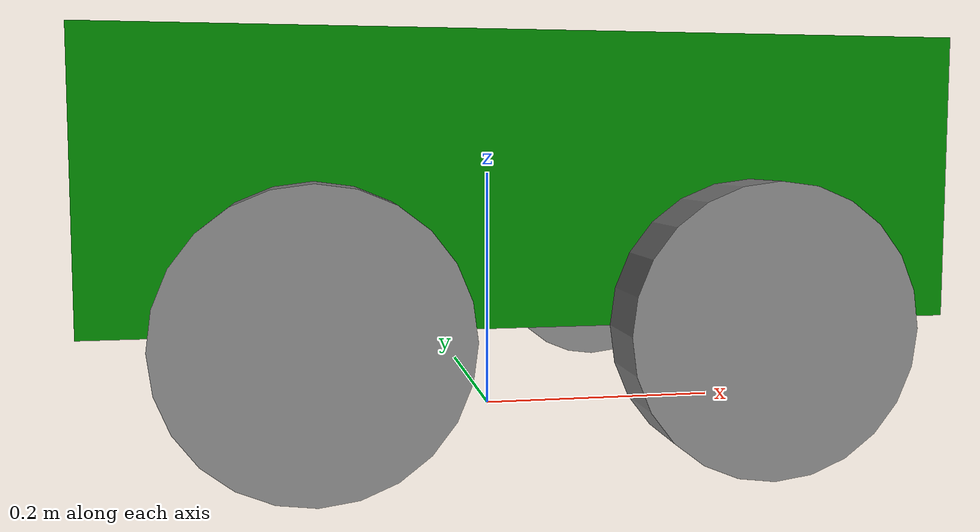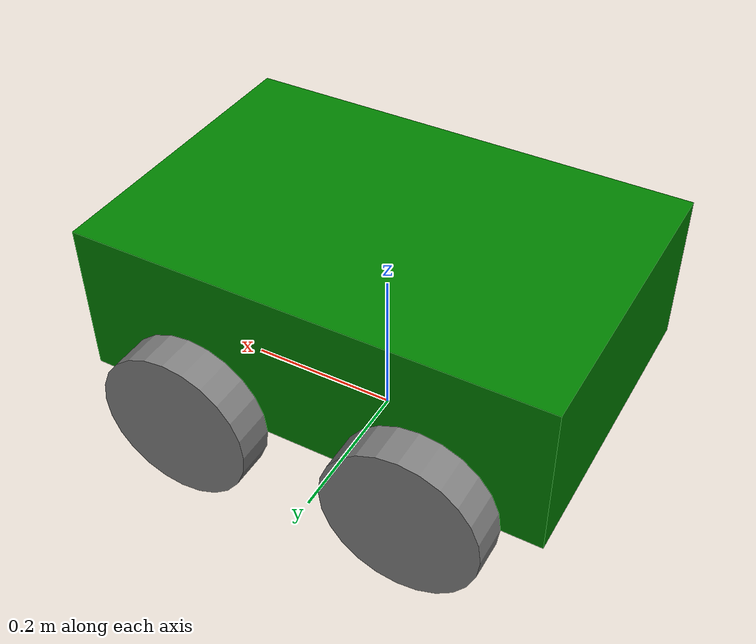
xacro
<?xml version ="1.0"?>
<robot name="my_robot" xmlns:xacro="http://www.ros.org/wiki/xacro">

    <xacro:include filename="common_properties.xacro"/>
    <xacro:include filename="mobile_base.xacro"/>
    <xacro:include filename="mobile_base_gazebo.xacro"/>
    <xacro:include filename="camera.xacro"/>

</robot>

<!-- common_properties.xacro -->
<robot xmlns:xacro="http://www.ros.org/wiki/xacro">
    <material name="green">
        <color rgba="0 0.5 0 1"/>
    </material>
    <material name="grey">
        <color rgba="0.5 0.5 0.5 1"/>
    </material>
    <xacro:macro name="box_inertia" params="m l w h xyz  rpy">
        <inertial>
            <origin xyz="${xyz}" rpy="${rpy}" />
            <mass value="${m}"/>
            <inertia ixx="${(m/12)*(h*h+l*l)}" ixy = "0" ixz = "0"
            iyy = "${(m/12)*(w*w+l*l)}" iyz = "0"
            izz="${(m/12)*(w*w+h*h)}"/>
        </inertial>
    </xacro:macro>
    <xacro:macro name="wheel_inertia" params="m r h xyz  rpy">
        <inertial>
            <origin xyz="${xyz}" rpy="${rpy}" />
            <mass value="${m}"/>
            <inertia ixx="${(m/12)*(3*r*r + h*h )}" ixy = "0" ixz = "0"
            iyy = "${(m/12)*(3*r*r + h*h)}" iyz = "0"
            izz="${(m/2)*(r*r)}"/>
        </inertial>
    </xacro:macro>

</robot>

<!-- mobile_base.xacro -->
<robot xmlns:xacro="http://www.ros.org/wiki/xacro">

    <xacro:property name="base_length" value="0.6"/>
    <xacro:property name="base_width" value="0.4"/>
    <xacro:property name="base_height" value="0.2"/>
    <xacro:property name="wheel_radius" value="0.1"/>
    <xacro:property name="wheel_length" value="0.05"/>

    <link name="base_link">
        <visual>
            <geometry >
                <box size="${base_length} ${base_width}  ${base_height}" />
            </geometry>
            <origin xyz ="0 0 ${base_height/2.0}" rpy="0 0 0" />
            <material name="green" />
        </visual>
        <collision>
            <geometry>
                <box size="${base_length} ${base_width}  ${base_height}" />
            </geometry>
            <origin xyz ="0 0 ${base_height/2.0}" rpy="0 0 0" />
        </collision>
        <xacro:box_inertia m="5.0" l="${base_length}" w="${base_width}" h="${base_height}"
        xyz="0 0 ${base_height/2.0}" rpy="0 0 0"/>
    </link>

    <xacro:macro name="wheel_link" params="prefix">
       <link name="${prefix}_wheel_link">
            <visual>
                <geometry>
                    <cylinder radius="${wheel_radius}" length="${wheel_length}"/>
                </geometry>
                <origin xyz="0 0 0" rpy="${pi/2.0} 0 0"/>
                <material name="grey"/>
            </visual>
            <collision>
                <geometry>
                    <cylinder radius="${wheel_radius}" length="${wheel_length}"/>
                </geometry>
                <origin xyz="0 0 0" rpy="${pi/2.0} 0 0"/>
            </collision>
            <xacro:wheel_inertia m="1.0" r="${wheel_radius}" h="${wheel_length}"
            xyz="0 0 0" rpy="${pi/2.0} 0 0"/>
       </link>
    </xacro:macro>

    <xacro:wheel_link prefix="rear_right"/>
    <xacro:wheel_link prefix="rear_left"/>
    <xacro:wheel_link prefix="front_left"/>
    <xacro:wheel_link prefix="front_right"/>

    <link name="base_footprint"/>

    <joint name="base_front_right_wheel_joint" type="continuous">
        <parent link="base_link"/>
        <child link="front_right_wheel_link"/>
        <origin xyz="${base_length/4.0} -${(base_width/2.0)+ (wheel_length/2.0)} 0" rpy="0 0 0"/>
        <axis xyz="0 1 0" />
    </joint>
    <joint name="base_front_left_wheel_joint" type="continuous">
        <parent link="base_link"/>
        <child link="front_left_wheel_link"/>
        <origin xyz="${base_length/4.0} ${(base_width/2.0)+ (wheel_length/2.0)} 0" rpy="0 0 0"/>
        <axis xyz="0 1 0" />
    </joint>

    <joint name="base_rear_right_wheel_joint" type="continuous">
        <parent link="base_link"/>
        <child link="rear_right_wheel_link"/>
        <origin xyz="-${base_length/4.0} -${(base_width/2.0)+ (wheel_length/2.0)} 0" rpy="0 0 0"/>
        <axis xyz="0 1 0" />
    </joint>
    <joint name="base_rear_left_wheel_joint" type="continuous">
        <parent link="base_link"/>
        <child link="rear_left_wheel_link"/>
        <origin xyz="-${base_length/4.0}  ${(base_width/2.0)+ (wheel_length/2.0)} 0" rpy="0 0 0"/>
        <axis xyz="0 1 0" />
    </joint>
    <joint name="base_joint" type="fixed">
        <parent link="base_footprint"/>
        <child link="base_link"/>
        <origin xyz="0 0 ${wheel_radius}" rpy="0 0 0"/>
    </joint>

</robot>

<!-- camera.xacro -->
<robot name="my_robot" xmlns:xacro="http://www.ros.org/wiki/xacro">

    <xacro:property name="camera_length" value="0.02"/>
    <xacro:property name="camera_width" value="0.1"/>
    <xacro:property name="camera_height" value="0.05"/>

    <link name = "camera_link">
        <visual>
                <geometry>
                    <box size="${camera_length} ${camera_width} ${camera_height}"/>
                </geometry>
                <material name="red"/>
        </visual>
        <collision>
            <geometry>
                <box size="${camera_length} ${camera_width}  ${camera_height}"/>
            </geometry>
        </collision>
        <xacro:box_inertia m="0.1" l="${camera_length}" w="${camera_width}" h="${camera_height}"
        xyz="0 0 0" rpy="0 0 0"/>
    </link>
    <joint name="base_camera_joint" type="fixed">
        <parent link="base_link"/>
        <child link="camera_link"/>
        <origin xyz="0.31 0 0.1" rpy="0 0 0"/>
    </joint>
    <gazebo reference="camera_link">
        <material>Gazebo/Black</material>
        <sensor name="camera_sensor" type="camera">
            <pose>0 0 0 0 0 0</pose>
            <visualize>true</visualize>
            <update_rate>10.0</update_rate>
             <plugin name="camera_controller" filename="libgazebo_ros_camera.so">
                <!-- Set TF frame name. If empty, defaults to link name -->
                <frame_name>camera_link</frame_name>
            </plugin>
        </sensor>
    </gazebo>

</robot>
